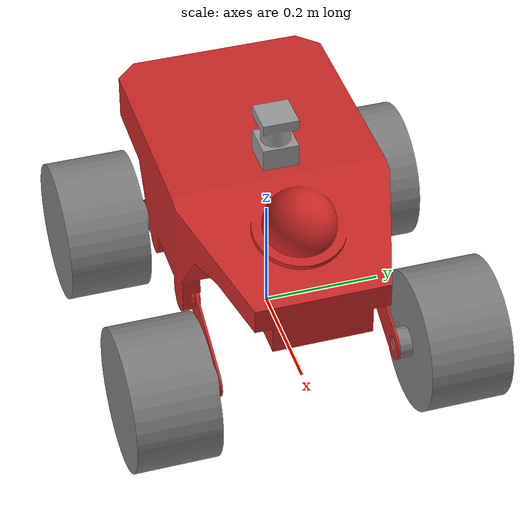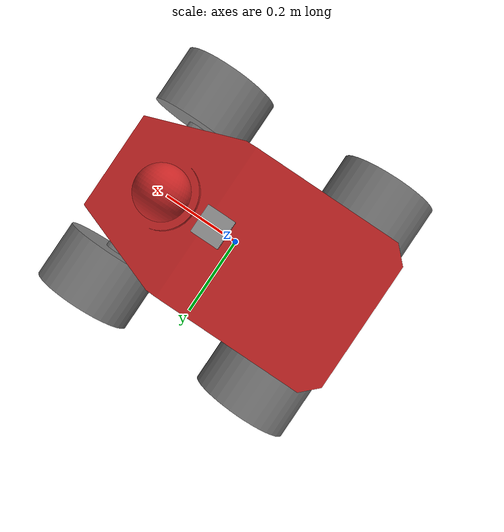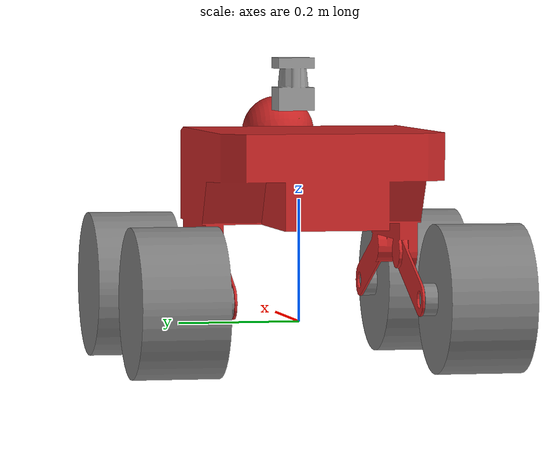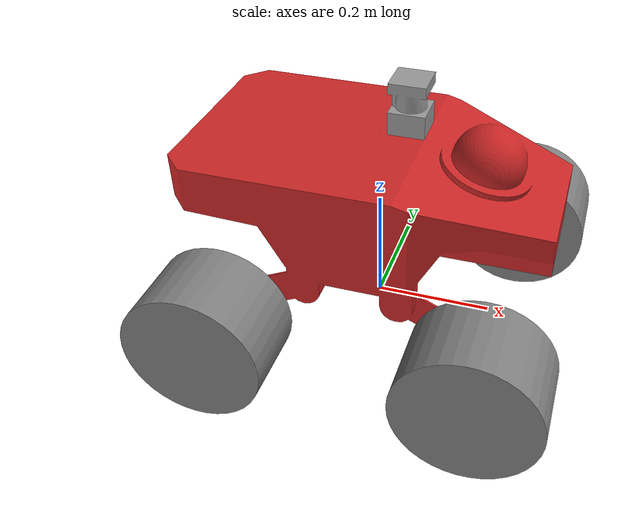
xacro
<?xml version="1.0"?>
<robot name="summit_xl" xmlns:xacro="http://www.ros.org/wiki/xacro">

  <!-- Import all Gazebo-customization elements, including Gazebo colors -->
  <xacro:include filename="$(find summit_xl_description)/urdf/summit_xl_robot.gazebo" />

  <!-- Constants for robot dimensions -->
  <xacro:property name="PI" value="3.1415926535897931"/>
  <xacro:property name="wheel_offset_x" value="0.223" />    <!-- x,y,z in base_footprint CS -->
  <xacro:property name="wheel_offset_y" value="0.154" />
  <xacro:property name="wheel_offset_z" value="0.0" />
  <xacro:property name="wheel_joint_damping" value="0.0" />
  <xacro:property name="wheel_joint_friction" value="0.0" />
  <xacro:property name="wheel_joint_effort_limit" value="100.0" />
  <xacro:property name="wheel_joint_velocity_limit" value="100.0" />
  <xacro:property name="wheel_mechanical_reduction" value="1.0" />

  <!-- BASE FOOTPRINT -->
  <!-- base_footprint is a fictitious link(frame) that is on the ground right below base_link origin,
             navigation stack depends on this frame -->
  <link name="base_footprint">
      <visual>
          <origin xyz="0 0 0" rpy="0 0 0" />
          <geometry>
             <box size="0.001 0.001 0.001" />
          </geometry>
      </visual>

      <collision>
          <origin xyz="0 0 0" rpy="0 0 0" />
          <geometry>
            <box size="0.001 0.001 0.001" />
         </geometry>
     </collision>
  </link>

  <joint name="base_footprint_joint" type="fixed">
     <!--NB: While you would think this would make it go up, it is oddly reversed.
      This moves the joint to 0,0,0 where we want it for rviz, etc. -->
     <origin xyz="0 0 0.050" rpy="0 0 0" />
     <parent link="base_footprint"/>
     <child link="base_link" />
  </joint>

  <!-- BASE_LINK (RED) -->

  <link name="base_link">
    <inertial>
      <mass value="25.0" />
      <origin xyz="0 0 0" />
      <inertia  ixx="1.391" ixy="0.004"  ixz="0.0"  iyy="6.853"  iyz="0.0"  izz="6.125" />
    </inertial>
    <visual>
       <origin xyz="0 0 0" rpy="0 0 0" />
       <geometry>
	 <mesh filename="package://summit_xl_description/meshes/summit_xl_chassis_cam1.dae"/>
       </geometry>
    </visual>
    <collision>
       <!-- origin xyz="0 0 0.06" rpy="0 0 0 " / -->
       <origin xyz="0 0 0" rpy="0 0 0 " />
       <geometry>
         <mesh filename="package://summit_xl_description/meshes/summit_xl_chassis_cam1.dae"/>
	 <box size = "0.750 0.4 0.3"/>
       </geometry>
    </collision>
  </link>

  <!-- BACK LEFT WHEEL (GREY) -->
  <link name="back_left_wheel">
    <inertial>
      <mass value="1.250" />
      <origin xyz="0 0 0" />
      <inertia  ixx="0.0109375" ixy="0.0"  ixz="0.0"  iyy="0.021125"  iyz="0.0"  izz="0.0109375" />
      <!--inertia ixx="1.0" ixy="0.0" ixz="0.0" iyy="1.0" iyz="0.0" izz="1.0"/-->
      <!--inertia  ixx="0.00584" ixy="0.0"  ixz="0.0"  iyy="0.00584"  iyz="0.0"  izz="0.01072"/-->
    </inertial>
    <visual>
       <origin xyz="0 0 0" rpy="0 0 0" />
       <geometry>
	 <mesh filename="package://summit_xl_description/meshes/summit_xl_wheel.dae" scale="1.0 1.0 1.0"/>
       </geometry>
	<material name="grey">
		<color rgba="0.5 0.5 0.5 1"/>
      	</material>
    </visual>
    <collision>
       <origin xyz="0 0 0" rpy="0 0 0" />
       <geometry>
	 <mesh filename="package://summit_xl_description/meshes/summit_xl_wheel.dae" scale="1.0 1.0 1.0"/>
       </geometry>
    </collision>
  </link>

  <joint name="joint_back_left_wheel" type="continuous">
    <parent link="base_link"/>
    <child link="back_left_wheel"/>
    <origin xyz="-${wheel_offset_x} ${wheel_offset_y} 0" rpy="0 0 0" />
    <axis xyz="0 1 0" rpy="0 0 0" />
    <limit effort="${wheel_joint_effort_limit}" velocity="${wheel_joint_velocity_limit}"/>
    <joint_properties damping="${wheel_joint_damping}" friction="{wheel_joint_friction}"/>
  </joint>

  <transmission name="joint_blw_trans">
     <type>transmission_interface/SimpleTransmission</type>
     <joint name="joint_back_left_wheel" />
     <actuator name="joint_blw_motor">
	<hardwareInterface>EffortJointInterface</hardwareInterface>
        <mechanicalReduction>${wheel_mechanical_reduction}</mechanicalReduction>
     </actuator>
  </transmission>

  <!-- BACK RIGHT WHEEL (GREY) -->
  <link name="back_right_wheel">
    <inertial>
      <mass value="1.250" />
      <origin xyz="0 0 0" />
      <inertia  ixx="0.0109375" ixy="0.0"  ixz="0.0"  iyy="0.021125"  iyz="0.0"  izz="0.0109375" />
    </inertial>
    <visual>
       <origin xyz="0 0 0" rpy="0 0 0" />
       <geometry>
	 <mesh filename="package://summit_xl_description/meshes/summit_xl_wheel.dae" scale="1.0 1.0 1.0"/>
       </geometry>
	<material name="grey">
		<color rgba="0.5 0.5 0.5 1"/>
      	</material>
    </visual>
    <collision>
       <origin xyz="0 0 0" rpy="0 0 0" />
       <geometry>
         <!--mesh filename=" ... wheel.dae "/-->
	 <mesh filename="package://summit_xl_description/meshes/summit_xl_wheel.dae" scale="1.0 1.0 1.0"/>
       </geometry>
    </collision>
  </link>

  <joint name="joint_back_right_wheel" type="continuous">
    <parent link="base_link"/>
    <child link="back_right_wheel"/>
    <origin xyz="-${wheel_offset_x} -${wheel_offset_y} 0" rpy="0 0 3.1416" />
    <axis xyz="0 1 0" rpy="0 0 0" />
    <limit effort="${wheel_joint_effort_limit}" velocity="${wheel_joint_velocity_limit}"/>
    <joint_properties damping="${wheel_joint_damping}" friction="{wheel_joint_friction}"/>
  </joint>

  <transmission name="joint_brw_trans">
     <type>transmission_interface/SimpleTransmission</type>
     <joint name="joint_back_right_wheel" />
     <actuator name="joint_brw_motor">
        <hardwareInterface>EffortJointInterface</hardwareInterface>
        <mechanicalReduction>${wheel_mechanical_reduction}</mechanicalReduction>
     </actuator>
  </transmission>

  <!-- FRONT LEFT WHEEL (GREY) -->
  <link name="front_left_wheel">
    <inertial>
      <mass value="1.250" />
      <origin xyz="0 0 0" />
      <inertia  ixx="0.0109375" ixy="0.0"  ixz="0.0"  iyy="0.021125"  iyz="0.0"  izz="0.0109375" />
    </inertial>
    <visual>
       <origin xyz="0 0 0" rpy="0 0 0" />
       <geometry>
	 <mesh filename="package://summit_xl_description/meshes/summit_xl_wheel.dae" scale="1.0 1.0 1.0"/>
       </geometry>
	<material name="grey">
		<color rgba="0.5 0.5 0.5 1"/>
      	</material>
    </visual>
    <collision>
       <origin xyz="0 0 0" rpy="0 0 0" />
       <geometry>
	 <mesh filename="package://summit_xl_description/meshes/summit_xl_wheel.dae" scale="1.0 1.0 1.0"/>
       </geometry>
    </collision>
  </link>

  <joint name="joint_front_left_wheel" type="continuous">
    <parent link="base_link"/>
    <child link="front_left_wheel"/>
    <origin xyz="${wheel_offset_x} ${wheel_offset_y} 0" rpy="0 0 0" />
    <axis xyz="0 1 0" rpy="0 0 0" />
    <limit effort="${wheel_joint_effort_limit}" velocity="${wheel_joint_velocity_limit}"/>
    <joint_properties damping="${wheel_joint_damping}" friction="{wheel_joint_friction}"/>
  </joint>

  <transmission name="joint_flw_trans">
     <type>transmission_interface/SimpleTransmission</type>
     <joint name="joint_front_left_wheel" />
     <actuator name="joint_flw_motor">
        <hardwareInterface>EffortJointInterface</hardwareInterface>
        <mechanicalReduction>${wheel_mechanical_reduction}</mechanicalReduction>
     </actuator>
  </transmission>

  <!-- FRONT RIGHT WHEEL (GREY) -->
  <link name="front_right_wheel">
    <inertial>
      <mass value="1.250" />
      <origin xyz="0 0 0" />
      <inertia  ixx="0.0109375" ixy="0.0"  ixz="0.0"  iyy="0.021125"  iyz="0.0"  izz="0.0109375" />
    </inertial>
    <visual>
       <origin xyz="0 0 0" rpy="0 0 0" />
       <geometry>
	 <mesh filename="package://summit_xl_description/meshes/summit_xl_wheel.dae" scale="1.0 1.0 1.0"/>
       </geometry>
	<material name="grey">
		<color rgba="0.5 0.5 0.5 1"/>
      	</material>
    </visual>
    <collision>
       <origin xyz="0 0 0" rpy="0 0 0" />
       <geometry>
	 <mesh filename="package://summit_xl_description/meshes/summit_xl_wheel.dae" scale="1.0 1.0 1.0"/>
       </geometry>
    </collision>
  </link>

  <joint name="joint_front_right_wheel" type="continuous">
    <parent link="base_link"/>
    <child link="front_right_wheel"/>
    <origin xyz="${wheel_offset_x} -${wheel_offset_y} 0" rpy="0 0 3.1416" />
    <axis xyz="0 1 0" rpy="0 0 0" />
    <limit effort="${wheel_joint_effort_limit}" velocity="${wheel_joint_velocity_limit}"/>
    <joint_properties damping="${wheel_joint_damping}" friction="{wheel_joint_friction}"/>
  </joint>

  <transmission name="joint_frw_trans">
     <type>transmission_interface/SimpleTransmission</type>
     <joint name="joint_front_right_wheel" />
     <actuator name="joint_frw_motor">
        <hardwareInterface>EffortJointInterface</hardwareInterface>
        <mechanicalReduction>${wheel_mechanical_reduction}</mechanicalReduction>
     </actuator>
  </transmission>

  <!-- HOKUYO SENSOR -->
  <joint name="hokuyo_laser_joint" type="fixed">
     <axis xyz="0 1 0" />
     <!-- front mounting -->
     <!-- origin xyz="0.29 0 0.1"/ -->
     <!-- top mounting -->
     <origin xyz="0.050 0 0.325"/>
     <parent link="base_link"/>
     <child link="hokuyo_laser_link"/>
  </joint>
  <link name="hokuyo_laser_link" type="laser">
     <inertial>
       <mass value="0.001" />
       <origin xyz="0 0 0" rpy="0 0 0" />
       <inertia ixx="0.0001" ixy="0" ixz="0" iyy="0.000001" iyz="0" izz="0.0001" />
    </inertial>
  </link>

  <!-- This adds a visual box to allow us to see the Hokuyo in rviz/gazebo -->
  <joint name="hokuyo_laser_box_joint" type="fixed">
    <origin xyz="0 0 0" rpy="0 0 0" />
    <parent link="hokuyo_laser_link" />
    <child link="hokuyo_laser_box_link"/>
  </joint>
  <link name="hokuyo_laser_box_link">
    <inertial>
      <mass value="0.01" />
      <origin xyz="0 0 0" />
      <inertia ixx="0.001"  ixy="0.0"  ixz="0.0"
               iyy="0.001"  iyz="0.0"
               izz="0.001" />
    </inertial>
    <visual>
      <origin xyz="0 0 0" rpy="0 0 0"/>
      <geometry>
        <!--box size="0.05 0.05 0.1" /-->
	<!-- mesh filename= "package://summit_xl_description/meshes/hok_tilt.dae" scale="0.5 0.5 0.5"/ -->
        <mesh filename="package://summit_xl_description/meshes/hokuyo-utm30-lx.dae"/>
      </geometry>
    </visual>
    <collision>
      <origin xyz="0 0 0" rpy="0 0 0"/>
      <geometry>
        <box size="0.05 0.05 0.1" />
      </geometry>
    </collision>
  </link>

  <!-- IMU SENSOR -->
  <joint name="imu_joint" type="fixed">
      <axis xyz="1 0 0"/>
      <origin xyz="0 0 0.2825"/>
      <parent link="base_link"/>
      <!-- child link="imu_link"/ -->
      <child link="imu" />
  </joint>

  <!-- link name="imu_link" -->
  <link name="imu">
      <inertial>
        <mass value="0.001"/>
        <origin rpy="0 0 0" xyz="0 0 0"/>
        <inertia ixx="0.0001" ixy="0" ixz="0" iyy="0.000001" iyz="0" izz="0.0001"/>
      </inertial>
      <visual>
        <origin rpy="0 0 0" xyz="0 0 0"/>
        <geometry>
          <box size="0.001 0.001 0.001"/>
        </geometry>
      </visual>
      <collision>
        <origin rpy="0 0 0" xyz="0 0 0"/>
        <geometry>
          <box size=".001 .001 .001"/>
        </geometry>
      </collision>
  </link>

</robot>
